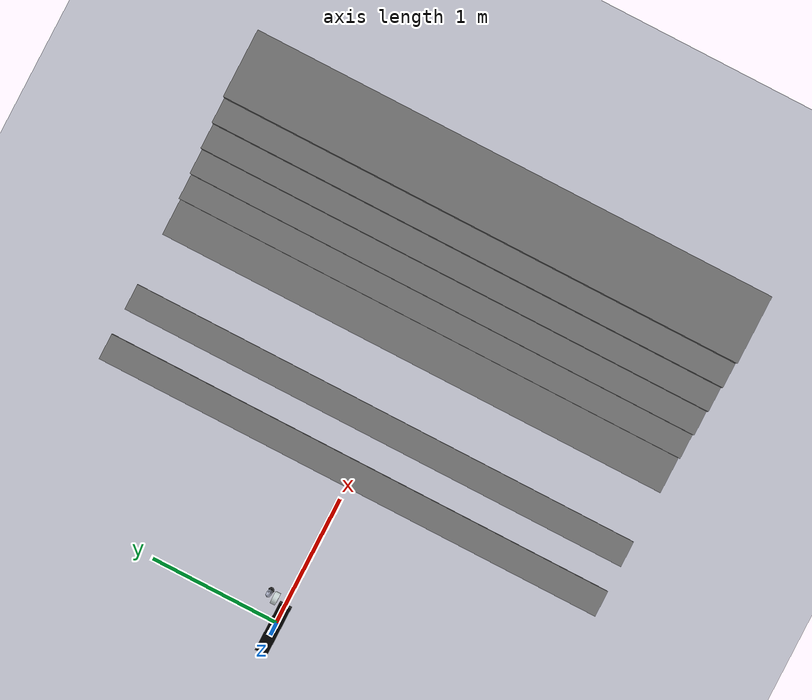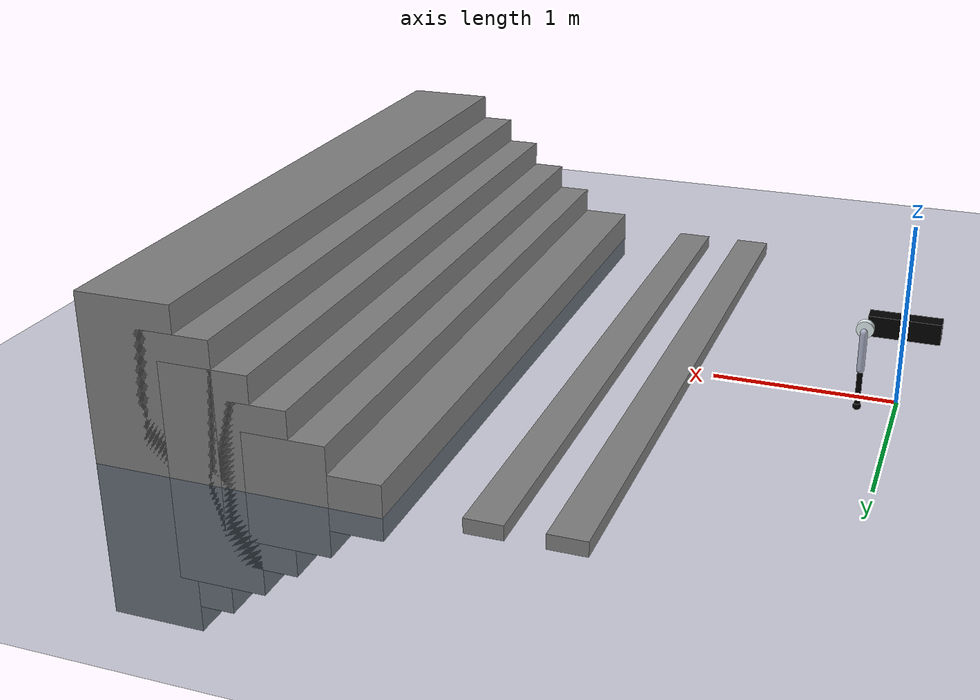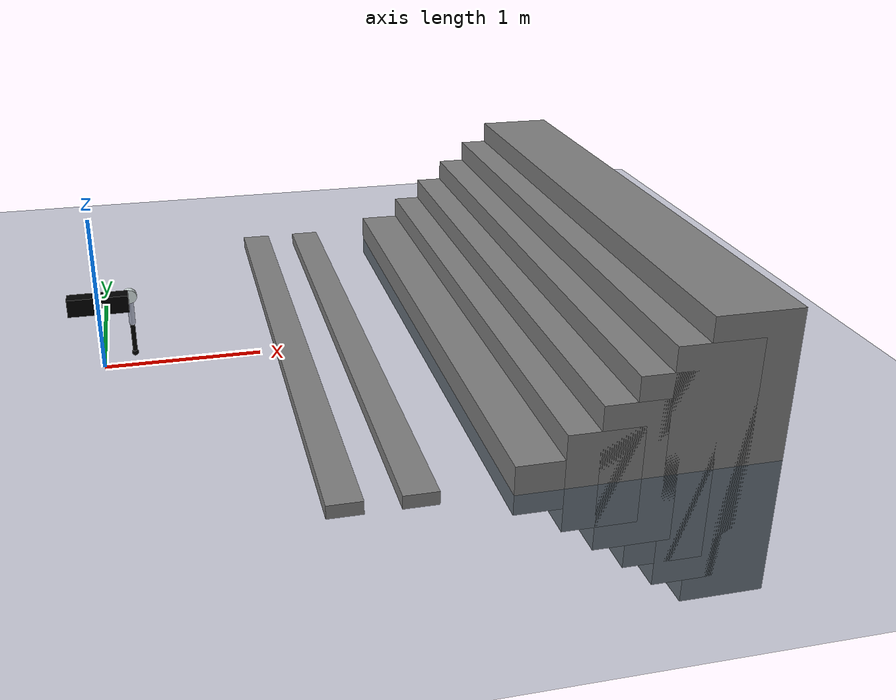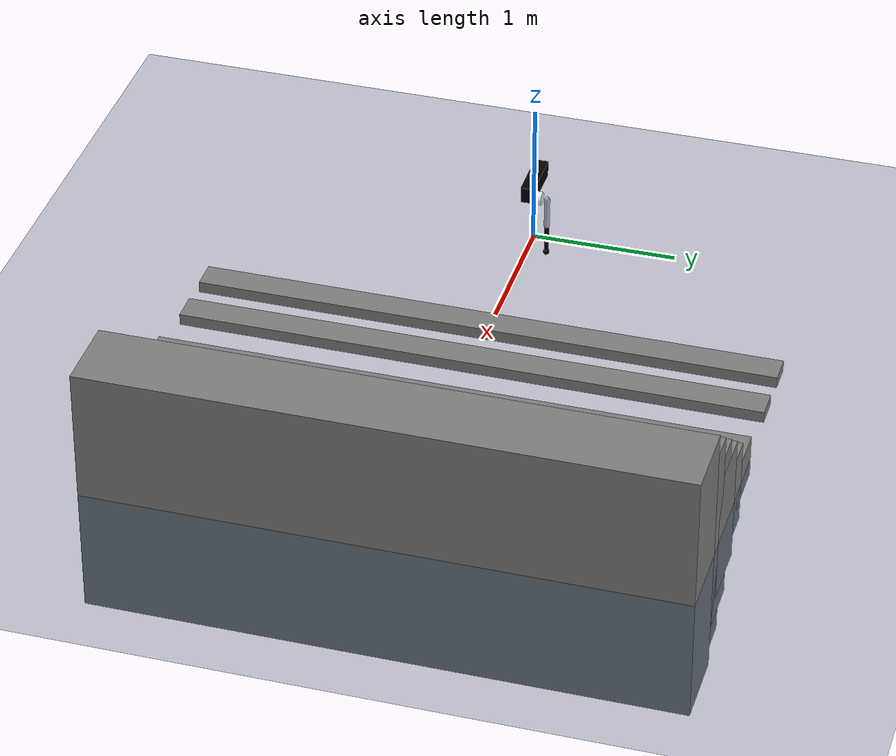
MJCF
<?xml version="1.0" encoding="UTF-8"?>
<mujoco model="go2 scene">
  <include file="go2.xml"/>

  <statistic center="0 0 0.1" extent="0.8"/>

  <visual>
    <headlight diffuse="0.6 0.6 0.6" ambient="0.3 0.3 0.3" specular="0 0 0"/>
    <rgba haze="0.15 0.25 0.35 1"/>
  </visual>

  <asset>
    <texture type="skybox" builtin="gradient" rgb1="0.3 0.5 0.7" rgb2="0 0 0" width="512" height="3072"/>
    <texture type="2d" name="groundplane" builtin="checker" mark="edge" rgb1="0.2 0.3 0.4" rgb2="0.1 0.2 0.3"
      markrgb="0.8 0.8 0.8" width="300" height="300"/>
    <material name="groundplane" texture="groundplane" texuniform="true" texrepeat="5 5" reflectance="0.2"/>
  </asset>

  <worldbody>
    <light pos="0 0 1.5" dir="0 0 -1" directional="true"/>
    <camera name="fixed" pos="1 -2 1" xyaxes="1 1 0 0 0 1"/>
    <geom name="floor" size="0 0 0.05" type="plane" material="groundplane"/>

    <geom pos="1.2 0 0.04" type="box" size="0.1 2 0.04" quat="1.0 0 0 0"/>
    <geom pos="1.6 0 0.04" type="box" size="0.1 2 0.04" quat="1.0 0 0 0"/>

    <geom pos="2.3 0 0.02" type="box" size="0.2 2 0.15" quat="1.0 0 0 0"/>
    <geom pos="2.6 0 0.02" type="box" size="0.22 2 0.3" quat="1.0 0 0 0"/>
    <geom pos="2.8 0 0.02" type="box" size="0.23 2 0.45" quat="1.0 0 0 0"/>
    <geom pos="3 0 0.02" type="box" size="0.24 2 0.6" quat="1.0 0 0 0"/>
    <geom pos="3.2 0 0.02" type="box" size="0.25 2 0.75" quat="1.0 0 0 0"/>
    <geom pos="3.4 0 0.02" type="box" size="0.26 2 0.9" quat="1.0 0 0 0"/>
  </worldbody>
</mujoco>

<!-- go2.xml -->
<mujoco model="go2">
  <compiler angle="radian"/>
  <option cone="elliptic" impratio="100"/>

  <default>
    <default class="go2">
      <geom friction="0.4" margin="0.001" condim="1"/>
      <joint axis="0 1 0" damping="0.1" armature="0.01" frictionloss="0.2"/>
      <motor ctrlrange="-23.7 23.7"/>
      <default class="abduction">
        <joint axis="1 0 0" range="-1.0472 1.0472"/>
      </default>
      <default class="hip">
        <default class="front_hip">
          <joint range="-1.5708 3.4907"/>
        </default>
        <default class="back_hip">
          <joint range="-0.5236 4.5379"/>
        </default>
      </default>
      <default class="knee">
        <joint range="-2.7227 -0.83776"/>
        <motor ctrlrange="-45.43 45.43"/>
      </default>
    </default>
  </default>

  <asset>
    <material name="metal" rgba=".9 .95 .95 1"/>
    <material name="black" rgba="0 0 0 1"/>
    <material name="white" rgba="1 1 1 1"/>
    <material name="gray" rgba="0.671705 0.692426 0.774270 1"/>
  </asset>

  <worldbody>
    <body name="base_link" pos="0 0 0.445" childclass="go2">
      <inertial pos="0.021112 0 -0.005366" quat="-0.000543471 0.713435 -0.00173769 0.700719"
        mass="6.921" diaginertia="0.107027 0.0980771 0.0244531"/>
      <freejoint/>
      <!-- Main body -->
      <geom type="box" size="0.1881 0.04675 0.057" material="black"/>
      <site name="imu" pos="-0.02557 0 0.04232"/>

      <!-- Front Left Leg -->
      <body name="FL_hip" pos="0.1934 0.0465 0">
        <joint name="FL_hip_joint" class="abduction"/>
        <geom type="cylinder" size="0.046 0.02" pos="0 0.04 0" quat="0.707 0.707 0 0" material="metal"/>
        <body name="FL_thigh" pos="0 0.0955 0">
          <joint name="FL_thigh_joint" class="front_hip"/>
          <geom type="capsule" size="0.02" fromto="0 0 0 0 0 -0.213" material="gray"/>
          <body name="FL_calf" pos="0 0 -0.213">
            <joint name="FL_calf_joint" class="knee"/>
            <geom type="capsule" size="0.015" fromto="0 0 0 0 0 -0.213" material="black"/>
            <geom name="FL_foot" type="sphere" size="0.022" pos="0 0 -0.213" material="black"/>
          </body>
        </body>
      </body>

      <!-- Other legs omitted for testing... -->
    </body>
  </worldbody>

  <actuator>
    <motor name="FL_hip" joint="FL_hip_joint"/>
    <motor name="FL_thigh" joint="FL_thigh_joint"/>
    <motor name="FL_calf" joint="FL_calf_joint"/>
  </actuator>
</mujoco>
